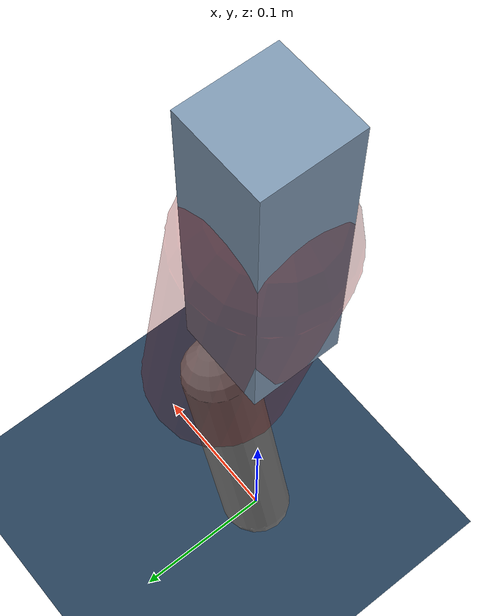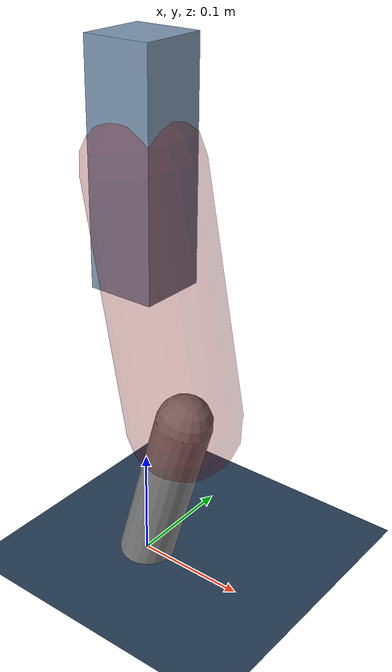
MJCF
<mujoco model="Hopper2D">
	<compiler inertiafromgeom="true" angle="radian" />
	<option timestep="0.001" integrator="implicit" cone="elliptic" solver="Newton" tolerance="1e-10" />

	<default>
		<geom contype="1" conaffinity="1" condim="3" friction="2 0.005 0.0001" solref="0.005 1" />
		<joint limited="true" damping="0.1" />
	</default>

	<asset>
		<texture name="skybox" type="skybox" builtin="gradient" rgb1=".4 .6 .8" rgb2="0 0 0" width="800" height="800" />
		<texture name="grid" type="2d" builtin="checker" rgb1=".1 .2 .3" rgb2=".2 .3 .4" width="300" height="300" mark="edge" markrgb=".2 .3 .4" />
		<material name="ground" texture="grid" texrepeat="1 1" texuniform="true" reflectance="0.1" />
		<material name="leg" rgba="0.5 0.6 0.7 1" />
	</asset>

	<worldbody>

		<geom name="floor" type="plane" size="5 5 0.25" material="ground" />

		<light directional="false" diffuse="0.8 0.8 0.8" specular="0.3 0.3 0.3" pos="0 0 2" dir="0 0 -1" />
		<light mode="targetbodycom" target="base" directional="false" diffuse="0.8 0.8 0.8" specular="0.3 0.3 0.3" pos="0 0 2" dir="0 0 -1" />

		<camera name="fixed" pos="0 -2 1" xyaxes="1 0 0 0 0 1" />
		<camera name="tracking" mode="trackcom" pos="0 -3 1" />

		<body name="root" pos="0 0 0.36687814726944346">
			<joint name="slide_x" type="slide" axis="1 0 0" range="-100 100" />
			<joint name="slide_z" type="slide" axis="0 0 1" range="0 10" />

			<body name="base" pos="0 0 0">
				<geom name="torso" type="box" size="0.03 0.03 0.1" mass="2.442" material="leg" />

				<body name="link1" pos="0 0 0" euler="0 1.375472864574726 0">
					<joint type="hinge" axis="0 -1 0" pos="0 0 0" name="hinge1" limited="true" range="-3.14 3.14" stiffness="0" damping="0.1" />
					<geom name="thigh" type="capsule" fromto="0 0 0 0.21905841428381534 0 0" size="0.05" rgba="0.5 0 0 0.3" mass="0.7772518771379199" />

					<body name="link2" pos="0.21905841428381534 0 0" euler="0 0.4680872581817676 0">
						<joint type="hinge" axis="0 -1 0" pos="0 0 0" name="hinge2" limited="true" range="-3.14 3.14" stiffness="0" damping="0.1" />
						<geom name="shank" type="capsule" fromto="0 0 0 0.1578197329856281 0 0" size="0.025" mass="0.3646377596870653" />

					</body>
				</body>
			</body>
		</body>
	</worldbody>

	<actuator>
		<motor name="torque1" joint="hinge1" ctrlrange="-82.82261003434233 82.82261003434233" ctrllimited="true" gear="1" />
		<motor name="torque2" joint="hinge2" ctrlrange="-43.49627025130389 43.49627025130389" ctrllimited="true" gear="1" />
	</actuator>
</mujoco>
